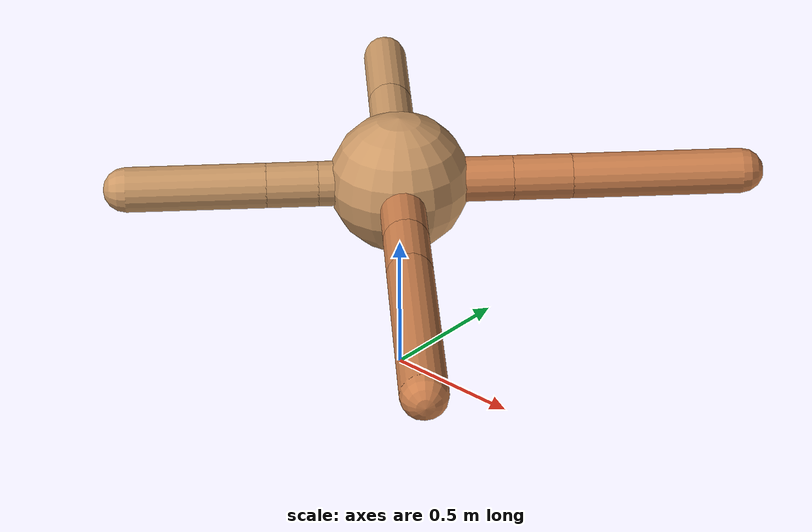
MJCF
<mujoco model="ant">
  <compiler angle="degree" coordinate="local" inertiafromgeom="true" />
  <option integrator="RK4" timestep="0.01" />
  <custom>
    <numeric data="0.0 0.0 0.55 1.0 0.0 0.0 0.0 0.0 1.0 0.0 -1.0 0.0 -1.0 0.0 1.0" name="init_qpos" />
  </custom>
  <default>
    <joint armature="1" damping="1" limited="true" />
    <geom conaffinity="0" condim="3" density="5.0" friction="1.5 0.1 0.1" margin="0.01" rgba="0.8 0.6 0.4 1" />
  </default>
  <worldbody>
    <body name="torso" pos="0 0 0.75">
      <geom name="torso_geom" pos="0 0 0" size="0.25" type="sphere" />

      <body name="front_left_leg" pos="0 0 0">
        <geom fromto="0.0 0.0 0.0 0.2845446930674405 0.2845446930674405 0.0" name="aux_1_geom" size="0.08" type="capsule" rgba=".8 .5 .3 1" />
        <body name="aux_1" pos="0.2845446930674405 0.2845446930674405 0.0">
          <joint axis="0 0 1" name="hip_1" pos="0.0 0.0 0.0" range="-40 40" type="hinge" />
          <geom fromto="0.0 0.0 0.0 0.14934290664757213 0.14934290664757213 0.0" name="left_leg_geom" size="0.08" type="capsule" rgba=".8 .5 .3 1" />
          <body pos="0.14934290664757213 0.14934290664757213 0.0" name="front_left_foot">
            <joint axis="-1 1 0" name="ankle_1" pos="0.0 0.0 0.0" range="30 100" type="hinge" />
            <geom fromto="0.0 0.0 0.0 0.42953642037025513 0.42953642037025513 0.0" name="left_ankle_geom" size="0.08" type="capsule" rgba=".8 .5 .3 1" />
          </body>
        </body>
      </body>
      <body name="front_right_leg" pos="0 0 0">
        <geom fromto="0.0 0.0 0.0 -0.2571096507820551 0.2571096507820551 0.0" name="aux_2_geom" size="0.08" type="capsule" />
        <body name="aux_2" pos="-0.2571096507820551 0.2571096507820551 0.0">
          <joint axis="0 0 1" name="hip_2" pos="0.0 0.0 0.0" range="-40 40" type="hinge" />
          <geom fromto="0.0 0.0 0.0 -0.17768692235594874 0.17768692235594874 0.0" name="right_leg_geom" size="0.08" type="capsule" />
          <body pos="-0.17768692235594874 0.17768692235594874 0.0" name="front_right_foot">
            <joint axis="1 1 0" name="ankle_2" pos="0.0 0.0 0.0" range="-100 -30" type="hinge" />
            <geom fromto="0.0 0.0 0.0 -0.2702248916274581 0.2702248916274581 0.0" name="right_ankle_geom" size="0.08" type="capsule" />
          </body>
        </body>
      </body>
      <body name="left_back_leg" pos="0 0 0">
        <geom fromto="0.0 0.0 0.0 -0.20299051557932885 -0.20299051557932885 0.0" name="aux_3_geom" size="0.08" type="capsule" />
        <body name="aux_3" pos="-0.20299051557932885 -0.20299051557932885 0.0">
          <joint axis="0 0 1" name="hip_3" pos="0.0 0.0 0.0" range="-40 40" type="hinge" />
          <geom fromto="0.0 0.0 0.0 -0.13020994474383638 -0.13020994474383638 0.0" name="back_leg_geom" size="0.08" type="capsule" />
          <body pos="-0.13020994474383638 -0.13020994474383638 0.0" name="left_back_foot">
            <joint axis="-1 1 0" name="ankle_3" pos="0.0 0.0 0.0" range="-100 -30" type="hinge" />
            <geom fromto="0.0 0.0 0.0 -0.35031543767237217 -0.35031543767237217 0.0" name="third_ankle_geom" size="0.08" type="capsule" />
          </body>
        </body>
      </body>
      <body name="right_back_leg" pos="0 0 0">
        <geom fromto="0.0 0.0 0.0 0.2941947927124399 -0.2941947927124399 0.0" name="aux_4_geom" size="0.08" type="capsule" rgba=".8 .5 .3 1" />
        <body name="aux_4" pos="0.2941947927124399 -0.2941947927124399 0.0">
          <joint axis="0 0 1" name="hip_4" pos="0.0 0.0 0.0" range="-40 40" type="hinge" />
          <geom fromto="0.0 0.0 0.0 0.16432049659426853 -0.16432049659426853 0.0" name="rightback_leg_geom" size="0.08" type="capsule" rgba=".8 .5 .3 1" />
          <body pos="0.16432049659426853 -0.16432049659426853 0.0" name="right_back_foot">
            <joint axis="1 1 0" name="ankle_4" pos="0.0 0.0 0.0" range="30 100" type="hinge" />
            <geom fromto="0.0 0.0 0.0 0.5345340944176583 -0.5345340944176583 0.0" name="fourth_ankle_geom" size="0.08" type="capsule" rgba=".8 .5 .3 1" />
          </body>
        </body>
      </body>
    </body>
  </worldbody>
  <actuator>
    <motor ctrllimited="true" ctrlrange="-1.0 1.0" joint="hip_4" gear="150" />
    <motor ctrllimited="true" ctrlrange="-1.0 1.0" joint="ankle_4" gear="150" />
    <motor ctrllimited="true" ctrlrange="-1.0 1.0" joint="hip_1" gear="150" />
    <motor ctrllimited="true" ctrlrange="-1.0 1.0" joint="ankle_1" gear="150" />
    <motor ctrllimited="true" ctrlrange="-1.0 1.0" joint="hip_2" gear="150" />
    <motor ctrllimited="true" ctrlrange="-1.0 1.0" joint="ankle_2" gear="150" />
    <motor ctrllimited="true" ctrlrange="-1.0 1.0" joint="hip_3" gear="150" />
    <motor ctrllimited="true" ctrlrange="-1.0 1.0" joint="ankle_3" gear="150" />
  </actuator>
</mujoco>
